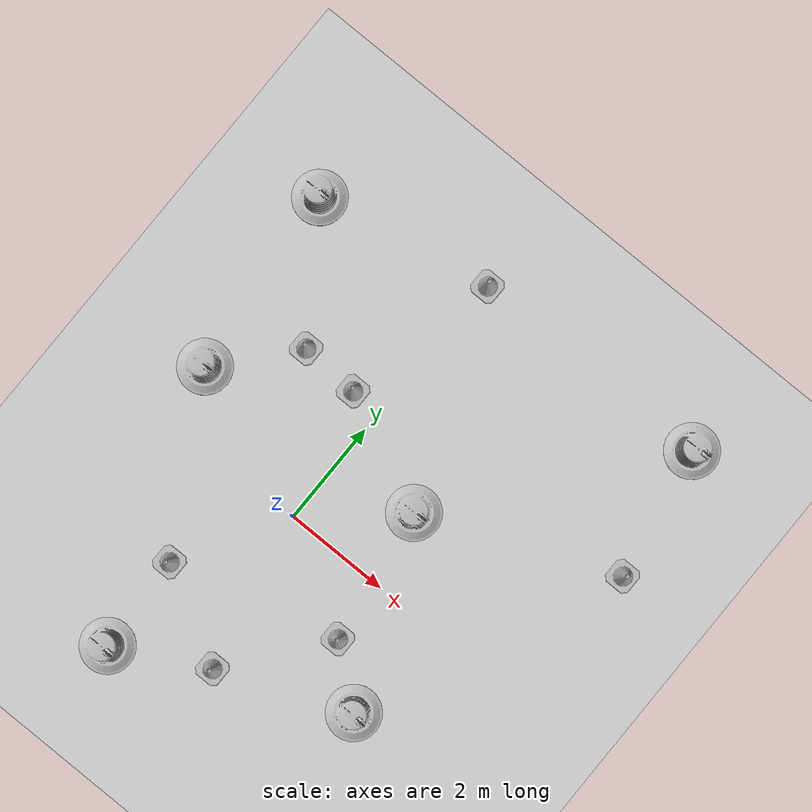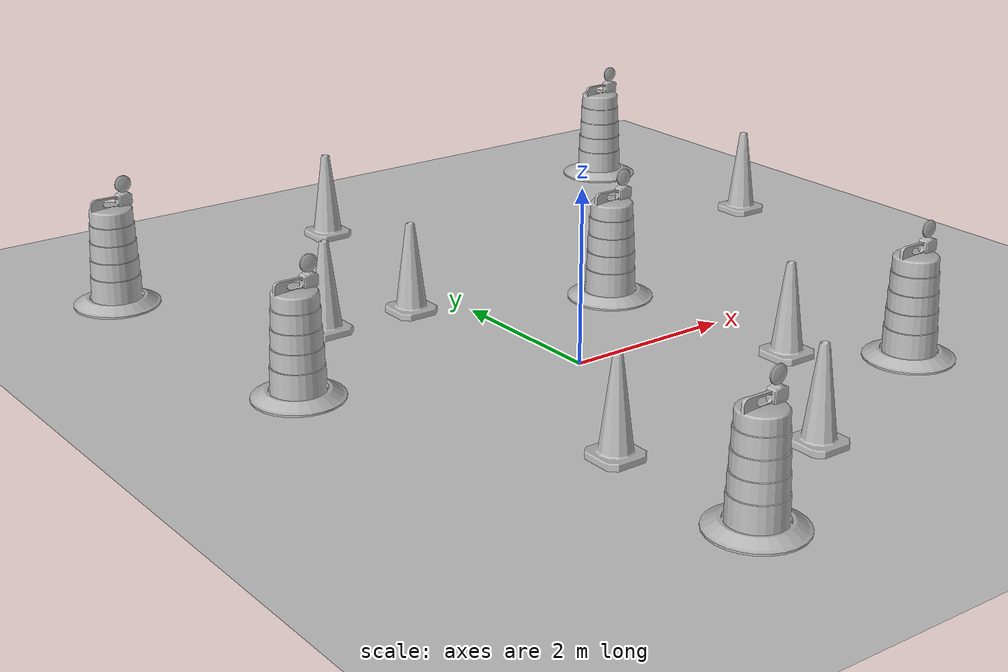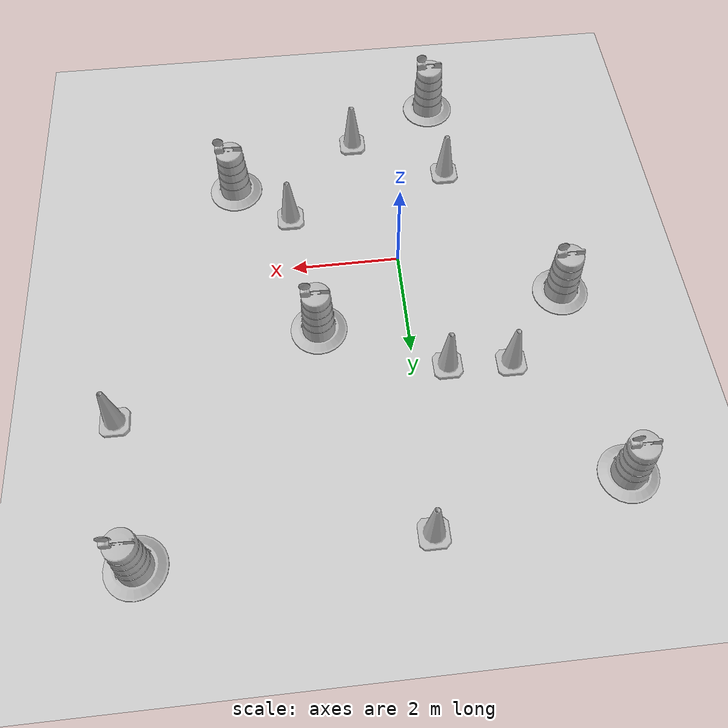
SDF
<sdf version="1.7">
 <world name="default">
  <light name="sun" type="directional">
   <pose>0 0 10 0 -0 0</pose>
   <diffuse>0.8 0.8 0.8 1</diffuse>
   <specular>0.2 0.2 0.2 1</specular>
   <attenuation>
    <range>1000</range>
    <constant>0.9</constant>
    <linear>0.01</linear>
    <quadratic>0.001</quadratic>
   </attenuation>
   <direction>-0.5 0.1 -0.9</direction>
   <spot><inner_angle>0</inner_angle><outer_angle>0</outer_angle><falloff>0</falloff></spot>
  </light>
  <model name="ground_plane">
   <static>1</static>
   <link name="link">
    <collision name="collision">
     <geometry><plane><normal>0 0 1</normal><size>100 100</size></plane></geometry>
     <surface>
      <contact><collide_bitmask>65535</collide_bitmask></contact>
      <friction><ode><mu>100</mu><mu2>50</mu2></ode></friction>
     </surface>
    </collision>
    <visual name="visual">
     <cast_shadows>0</cast_shadows>
     <geometry><plane><normal>0 0 1</normal><size>100 100</size></plane></geometry>
     <material>
      <script><uri>file://media/materials/scripts/gazebo.material</uri><name>Gazebo/Grey</name></script>
     </material>
    </visual>
   </link>
  </model>
  <gravity>0 0 -9.8</gravity>
  <magnetic_field>6e-06 2.3e-05 -4.2e-05</magnetic_field>
  <atmosphere type="adiabatic"/>
  <physics type="ode">
   <max_step_size>0.001</max_step_size>
   <real_time_factor>1</real_time_factor>
   <real_time_update_rate>1000</real_time_update_rate>
  </physics>
  <scene><ambient>0.4 0.4 0.4 1</ambient><background>0.7 0.7 0.7 1</background><shadows>1</shadows></scene>
  <audio><device>default</device></audio>
  <spherical_coordinates>
   <surface_model>EARTH_WGS84</surface_model>
   <latitude_deg>0</latitude_deg>
   <longitude_deg>0</longitude_deg>
   <elevation>0</elevation>
   <heading_deg>0</heading_deg>
  </spherical_coordinates>
  <model name="Construction Barrel">
   <link name="link">
    <inertial>
     <pose>0 0 0.4 0 -0 0</pose>
     <mass>500</mass>
     <inertia><ixx>51.2096</ixx><iyy>51.2096</iyy><izz>25</izz><ixy>0</ixy><ixz>0</ixz><iyz>0</iyz></inertia>
    </inertial>
    <collision name="collision">
     <geometry><mesh><uri>model://construction_barrel/meshes/construction_barrel.dae</uri></mesh></geometry>
    </collision>
    <visual name="visual">
     <geometry><mesh><uri>model://construction_barrel/meshes/construction_barrel.dae</uri></mesh></geometry>
    </visual>
   </link>
   <pose>1.60233 1.40015 -2e-06 4e-06 7e-06 -2.6e-05</pose>
  </model>
  <model name="Construction Cone">
   <link name="link">
    <collision name="collision">
     <geometry>
      <mesh><scale>10 10 10</scale><uri>model://construction_cone/meshes/construction_cone.dae</uri></mesh>
     </geometry>
    </collision>
    <visual name="visual">
     <geometry>
      <mesh><scale>10 10 10</scale><uri>model://construction_cone/meshes/construction_cone.dae</uri></mesh>
     </geometry>
    </visual>
    <inertial>
     <inertia><ixx>1</ixx><ixy>0</ixy><ixz>0</ixz><iyy>1</iyy><iyz>0</iyz><izz>1</izz></inertia>
     <mass>1</mass>
    </inertial>
   </link>
   <pose>-1.18586 -2.00561 -0 0 -0 0</pose>
  </model>
  <model name="Construction Cone_0">
   <link name="link">
    <collision name="collision">
     <geometry>
      <mesh><scale>10 10 10</scale><uri>model://construction_cone/meshes/construction_cone.dae</uri></mesh>
     </geometry>
    </collision>
    <visual name="visual">
     <geometry>
      <mesh><scale>10 10 10</scale><uri>model://construction_cone/meshes/construction_cone.dae</uri></mesh>
     </geometry>
    </visual>
    <inertial>
     <inertia><ixx>1</ixx><ixy>0</ixy><ixz>0</ixz><iyy>1</iyy><iyz>0</iyz><izz>1</izz></inertia>
     <mass>1</mass>
    </inertial>
   </link>
   <pose>0.594907 -2.9771 -0 0 -1e-06 0</pose>
  </model>
  <model name="Construction Cone_1">
   <link name="link">
    <collision name="collision">
     <geometry>
      <mesh><scale>10 10 10</scale><uri>model://construction_cone/meshes/construction_cone.dae</uri></mesh>
     </geometry>
    </collision>
    <visual name="visual">
     <geometry>
      <mesh><scale>10 10 10</scale><uri>model://construction_cone/meshes/construction_cone.dae</uri></mesh>
     </geometry>
    </visual>
    <inertial>
     <inertia><ixx>1</ixx><ixy>0</ixy><ixz>0</ixz><iyy>1</iyy><iyz>0</iyz><izz>1</izz></inertia>
     <mass>1</mass>
    </inertial>
   </link>
   <pose>-1.7168 2.4425 -0 0 -0 0</pose>
  </model>
  <model name="Construction Barrel_0">
   <link name="link">
    <inertial>
     <pose>0 0 0.4 0 -0 0</pose>
     <mass>500</mass>
     <inertia><ixx>51.2096</ixx><iyy>51.2096</iyy><izz>25</izz><ixy>0</ixy><ixz>0</ixz><iyz>0</iyz></inertia>
    </inertial>
    <collision name="collision">
     <geometry><mesh><uri>model://construction_barrel/meshes/construction_barrel.dae</uri></mesh></geometry>
    </collision>
    <visual name="visual">
     <geometry><mesh><uri>model://construction_barrel/meshes/construction_barrel.dae</uri></mesh></geometry>
    </visual>
   </link>
   <pose>-2.90095 1.0613 -3e-06 6e-06 1.1e-05 -1.9e-05</pose>
  </model>
  <model name="Construction Barrel_0_clone">
   <link name="link">
    <inertial>
     <pose>0 0 0.4 0 -0 0</pose>
     <mass>500</mass>
     <inertia><ixx>51.2096</ixx><iyy>51.2096</iyy><izz>25</izz><ixy>0</ixy><ixz>0</ixz><iyz>0</iyz></inertia>
    </inertial>
    <collision name="collision">
     <geometry><mesh><uri>model://construction_barrel/meshes/construction_barrel.dae</uri></mesh></geometry>
    </collision>
    <visual name="visual">
     <geometry><mesh><uri>model://construction_barrel/meshes/construction_barrel.dae</uri></mesh></geometry>
    </visual>
   </link>
   <pose>-3.23416 4.67636 -2e-06 -7e-06 -4e-06 -1.9e-05</pose>
  </model>
  <model name="Construction Barrel_0_clone_0">
   <link name="link">
    <inertial>
     <pose>0 0 0.4 0 -0 0</pose>
     <mass>500</mass>
     <inertia><ixx>51.2096</ixx><iyy>51.2096</iyy><izz>25</izz><ixy>0</ixy><ixz>0</ixz><iyz>0</iyz></inertia>
    </inertial>
    <collision name="collision">
     <geometry><mesh><uri>model://construction_barrel/meshes/construction_barrel.dae</uri></mesh></geometry>
    </collision>
    <visual name="visual">
     <geometry><mesh><uri>model://construction_barrel/meshes/construction_barrel.dae</uri></mesh></geometry>
    </visual>
   </link>
   <pose>-1.09431 -3.83784 -0 0 0 -1.3e-05</pose>
  </model>
  <model name="Construction Barrel_0_clone_1">
   <link name="link">
    <inertial>
     <pose>0 0 0.4 0 -0 0</pose>
     <mass>500</mass>
     <inertia><ixx>51.2096</ixx><iyy>51.2096</iyy><izz>25</izz><ixy>0</ixy><ixz>0</ixz><iyz>0</iyz></inertia>
    </inertial>
    <collision name="collision">
     <geometry><mesh><uri>model://construction_barrel/meshes/construction_barrel.dae</uri></mesh></geometry>
    </collision>
    <visual name="visual">
     <geometry><mesh><uri>model://construction_barrel/meshes/construction_barrel.dae</uri></mesh></geometry>
    </visual>
   </link>
   <pose>3.01548 -2.00124 -1e-06 4e-06 -1e-06 -1.5e-05</pose>
  </model>
  <model name="Construction Barrel_0_clone_2">
   <link name="link">
    <inertial>
     <pose>0 0 0.4 0 -0 0</pose>
     <mass>500</mass>
     <inertia><ixx>51.2096</ixx><iyy>51.2096</iyy><izz>25</izz><ixy>0</ixy><ixz>0</ixz><iyz>0</iyz></inertia>
    </inertial>
    <collision name="collision">
     <geometry><mesh><uri>model://construction_barrel/meshes/construction_barrel.dae</uri></mesh></geometry>
    </collision>
    <visual name="visual">
     <geometry><mesh><uri>model://construction_barrel/meshes/construction_barrel.dae</uri></mesh></geometry>
    </visual>
   </link>
   <pose>4.7156 5.36326 -0 0 0 -1.3e-05</pose>
  </model>
  <model name="Construction Cone_0_clone">
   <link name="link">
    <collision name="collision">
     <geometry>
      <mesh><scale>10 10 10</scale><uri>model://construction_cone/meshes/construction_cone.dae</uri></mesh>
     </geometry>
    </collision>
    <visual name="visual">
     <geometry>
      <mesh><scale>10 10 10</scale><uri>model://construction_cone/meshes/construction_cone.dae</uri></mesh>
     </geometry>
    </visual>
    <inertial>
     <inertia><ixx>1</ixx><ixy>0</ixy><ixz>0</ixz><iyy>1</iyy><iyz>0</iyz><izz>1</izz></inertia>
     <mass>1</mass>
    </inertial>
   </link>
   <pose>1.97193 -1.17103 -0 0 -0 0</pose>
  </model>
  <model name="Construction Cone_0_clone_0">
   <link name="link">
    <collision name="collision">
     <geometry>
      <mesh><scale>10 10 10</scale><uri>model://construction_cone/meshes/construction_cone.dae</uri></mesh>
     </geometry>
    </collision>
    <visual name="visual">
     <geometry>
      <mesh><scale>10 10 10</scale><uri>model://construction_cone/meshes/construction_cone.dae</uri></mesh>
     </geometry>
    </visual>
    <inertial>
     <inertia><ixx>1</ixx><ixy>0</ixy><ixz>0</ixz><iyy>1</iyy><iyz>0</iyz><izz>1</izz></inertia>
     <mass>1</mass>
    </inertial>
   </link>
   <pose>5.16185 2.86681 -0 0 -0 0</pose>
  </model>
  <model name="Construction Cone_0_clone_1">
   <link name="link">
    <collision name="collision">
     <geometry>
      <mesh><scale>10 10 10</scale><uri>model://construction_cone/meshes/construction_cone.dae</uri></mesh>
     </geometry>
    </collision>
    <visual name="visual">
     <geometry>
      <mesh><scale>10 10 10</scale><uri>model://construction_cone/meshes/construction_cone.dae</uri></mesh>
     </geometry>
    </visual>
    <inertial>
     <inertia><ixx>1</ixx><ixy>0</ixy><ixz>0</ixz><iyy>1</iyy><iyz>0</iyz><izz>1</izz></inertia>
     <mass>1</mass>
    </inertial>
   </link>
   <pose>0.071623 5.32976 -0 1e-06 -0 0</pose>
  </model>
  <model name="Construction Cone_0_clone_2">
   <link name="link">
    <collision name="collision">
     <geometry>
      <mesh><scale>10 10 10</scale><uri>model://construction_cone/meshes/construction_cone.dae</uri></mesh>
     </geometry>
    </collision>
    <visual name="visual">
     <geometry>
      <mesh><scale>10 10 10</scale><uri>model://construction_cone/meshes/construction_cone.dae</uri></mesh>
     </geometry>
    </visual>
    <inertial>
     <inertia><ixx>1</ixx><ixy>0</ixy><ixz>0</ixz><iyy>1</iyy><iyz>0</iyz><izz>1</izz></inertia>
     <mass>1</mass>
    </inertial>
   </link>
   <pose>-0.594084 2.38455 -0 0 -0 0</pose>
  </model>
 </world>
</sdf>
